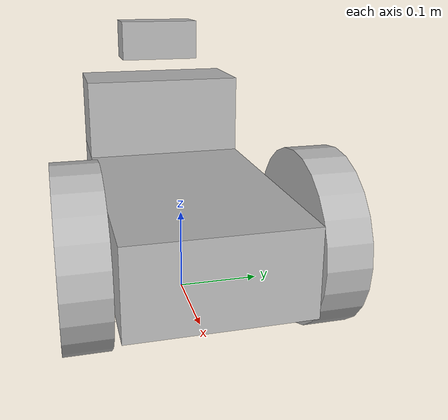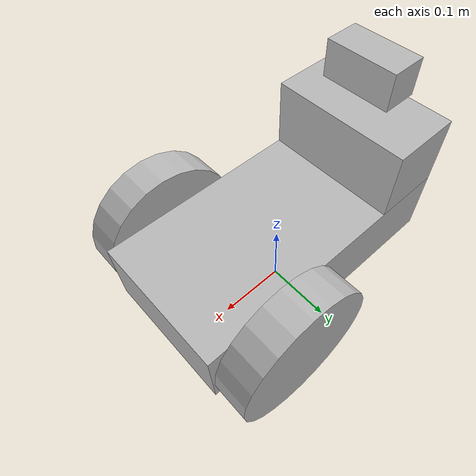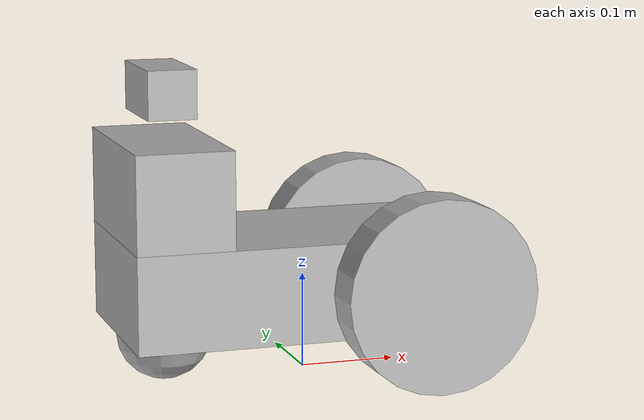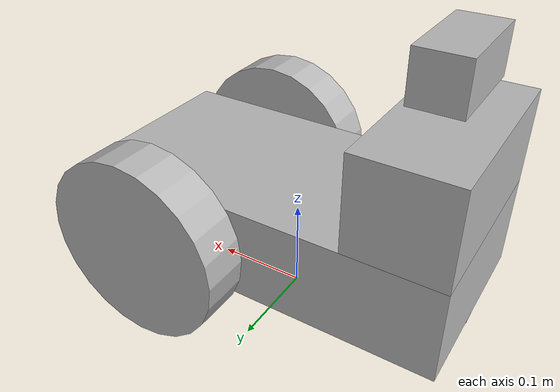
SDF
<?xml version='1.0'?>
<sdf version='1.7'>
  <model name="tuto">
    <static>false</static>

    <link name="base_footprint"/>

    <joint name="base_joint" type="fixed">
      <parent>base_footprint</parent>
      <child>base_link</child>
      <pose>0.0 0.0 0.010 0 0 0</pose>
    </joint>

    <link name='base_link'>
      <pose>0 0 .1 0 0 0</pose>

      <collision name='collision'>
        <geometry>
          <box>
            <size>.4 .2 .1</size>
          </box>
          <pose>-0.15 0 .1 0 0 0</pose>
          <box>
            <size>0.1 .2 .1</size>
          </box>
        </geometry>
      </collision>

      <visual name='visual'>
        <geometry>
          <box>
            <size>.4 .2 .1</size>
          </box>
        </geometry>
      </visual>

      <visual name='front_up'>
      <pose>-0.15 0 .1 0 0 0</pose>
        <geometry>
          <box>
            <size>0.1 .2 .1</size>
          </box>
        </geometry>
      </visual>

      <collision name='caster_collision'>
        <pose>-0.15 0 -0.05 0 0 0</pose>
        <geometry>
            <sphere>
            <radius>.05</radius>
          </sphere>
        </geometry>

        <surface>
          <friction>
            <ode>
              <mu>0</mu>
              <mu2>0</mu2>
              <slip1>1.0</slip1>
              <slip2>1.0</slip2>
            </ode>
          </friction>
        </surface>
      </collision>

      <visual name='caster_visual'>
        <pose>-0.15 0 -0.05 0 0 0</pose>
        <geometry>
          <sphere>
            <radius>.05</radius>
          </sphere>
        </geometry>
      </visual>
    </link>

    <link name="wheel_left_link">
      <pose>0.1 0.13 0.1 0 1.5707 1.5707</pose>
      <collision name="collision">
        <geometry>
          <cylinder>
            <radius>.1</radius>
            <length>.05</length>
          </cylinder>
        </geometry>
      </collision>
      <visual name="visual">
        <geometry>
          <cylinder>
            <radius>.1</radius>
            <length>.05</length>
          </cylinder>
        </geometry>
      </visual>
    </link>

    <link name="wheel_right_link">
      <pose>0.1 -0.13 0.1 0 1.5707 1.5707</pose>
      <collision name="collision">
        <geometry>
          <cylinder>
            <radius>.1</radius>
            <length>.05</length>
          </cylinder>
        </geometry>
      </collision>
      <visual name="visual">
        <geometry>
          <cylinder>
            <radius>.1</radius>
            <length>.05</length>
          </cylinder>
        </geometry>
      </visual>
    </link>

    <joint type="revolute" name="wheel_left_joint">
      <pose>0 0 -0.03 0 0 0</pose>
      <parent>base_link</parent>
      <child>wheel_left_link</child>
      <axis>
        <xyz>0 0 -1</xyz>
      </axis>
    </joint>

    <joint type="revolute" name="wheel_right_joint">
      <pose>0 0 0.03 0 0 0</pose>
      <parent>base_link</parent>
      <child>wheel_right_link</child>
      <axis>
        <xyz>0 0 -1</xyz>
      </axis>
    </joint>

    <link name="camera_link">
      <pose>-0.15 0 .3 0 0 0</pose>
      <collision name="collision">
        <geometry>
          <box>
            <size>0.05 .1 .05</size>
          </box>
        </geometry>
      </collision>
      <visual name="visual">
        <geometry>
          <box>
            <size>0.05 .1 .05</size>
          </box>
        </geometry>
      </visual>

      <sensor name="depth_camera" type="camera">
        <always_on>true</always_on>
        <visualize>false</visualize>
        <update_rate>5</update_rate>
        <camera name="camera">
          <horizontal_fov>1.02974</horizontal_fov>
          <image>
            <width>640</width>
            <height>480</height>
            <format>R8G8B8</format>
          </image>
          <clip>
            <near>0.02</near>
            <far>10</far>
          </clip>
          <noise>
            <type>gaussian</type>
            <!-- Noise is sampled independently per pixel on each frame.
                That pixel's noise value is added to each of its color
                  channels, which at that point lie in the range [0,1]. -->
            <mean>0.0</mean>
            <stddev>0.007</stddev>
          </noise>
        </camera>
        <plugin name="depth_camera_controller" filename="libgazebo_ros_camera.so">
          <camera_name>camera_link</camera_name>
          <frame_name>camera_link_frame</frame_name>
          <hack_baseline>0</hack_baseline>
          <min_depth>0.001</min_depth>
        </plugin>
      </sensor>
    </link>

    <joint type="revolute" name="camera_base_joint">
      <pose>-0.15 0 .3 0 0 0</pose>
      <parent>base_link</parent>
      <child>camera_link</child>
      <axis>
        <xyz>1 0 0</xyz>
      </axis>
    </joint>

    <transmission name="camera_base_tran">
      <type>transmission_interface/SimpleTransmission</type>
      <joint name="camera_base_joint">
        <hardwareInterface>EffortJointInterface</hardwareInterface>
      </joint>
      <actuator name="camera_base">
        <mechanicalReduction>1.0</mechanicalReduction>
        <hardwareInterface>EffortJointInterface</hardwareInterface>
      </actuator>
    </transmission>

    <gazebo>
      <plugin name="gazebo_ros_control" filename="libgazebo_ros_control.so">
        <robotNamespace>/fobo</robotNamespace>
      </plugin>
    </gazebo>

    <!-- Controls the differential drive robot -->
    <plugin name='diff_drive' filename='libgazebo_ros_diff_drive.so'>
      <ros>
        <namespace>/fobo</namespace>
        <remapping>cmd_vel:=cmd_vel</remapping>
        <remapping>odom:=odom</remapping>
      </ros>

      <!-- wheels -->
      <left_joint>wheel_left_joint</left_joint>
      <right_joint>wheel_right_joint</right_joint>

      <!-- kinematics -->
      <wheel_separation>0.26</wheel_separation>
      <wheel_diameter>0.2</wheel_diameter>

      <!-- limits -->
      <max_wheel_torque>20</max_wheel_torque>
      <max_wheel_acceleration>1.0</max_wheel_acceleration>

      <!-- output -->
      <publish_odom>true</publish_odom>
      <publish_odom_tf>true</publish_odom_tf>
      <publish_wheel_tf>true</publish_wheel_tf>

      <odometry_frame>odom</odometry_frame>
      <robot_base_frame>chassis</robot_base_frame>
    </plugin>
  </model>
</sdf>
